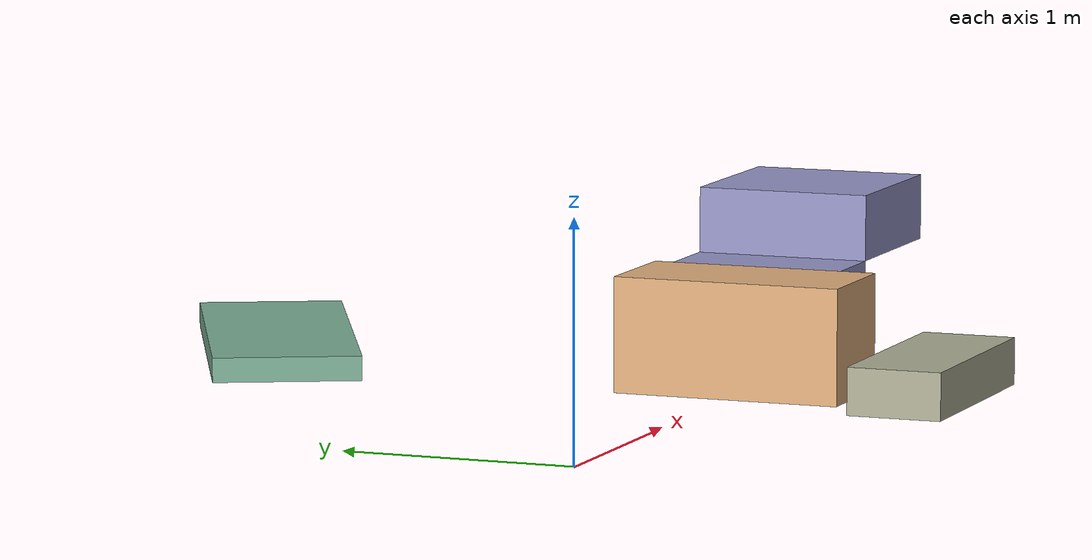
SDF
<?xml version="1.0"?>
<sdf version="1.6">
  <model name="obstacle_course">
    <static>true</static>

    <!-- Central low wall -->
    <link name="central_wall">
      <collision name="central_wall_collision">
        <geometry>
          <box>
            <size>0.5 1.0 0.5</size>
          </box>
        </geometry>
        <pose>2.0 0 0.25 0 0 0</pose>
      </collision>
      <visual name="central_wall_visual">
        <geometry>
          <box>
            <size>0.5 1.0 0.5</size>
          </box>
        </geometry>
        <pose>2.0 0 0.25 0 0 0</pose>
        <material>
          <ambient>0.7 0.5 0.3 1</ambient>
          <diffuse>0.9 0.7 0.5 1</diffuse>
        </material>
      </visual>
    </link>

    <!-- Step platforms -->
    <link name="step_1">
      <collision name="step_1_collision">
        <geometry>
          <box>
            <size>0.8 0.8 0.3</size>
          </box>
        </geometry>
        <pose>3.5 0.5 0.15 0 0 0</pose>
      </collision>
      <visual name="step_1_visual">
        <geometry>
          <box>
            <size>0.8 0.8 0.3</size>
          </box>
        </geometry>
        <pose>3.5 0.5 0.15 0 0 0</pose>
        <material>
          <ambient>0.4 0.4 0.6 1</ambient>
          <diffuse>0.6 0.6 0.8 1</diffuse>
        </material>
      </visual>
    </link>

    <link name="step_2">
      <collision name="step_2_collision">
        <geometry>
          <box>
            <size>0.8 0.8 0.3</size>
          </box>
        </geometry>
        <pose>4.3 0.5 0.45 0 0 0</pose>
      </collision>
      <visual name="step_2_visual">
        <geometry>
          <box>
            <size>0.8 0.8 0.3</size>
          </box>
        </geometry>
        <pose>4.3 0.5 0.45 0 0 0</pose>
        <material>
          <ambient>0.4 0.4 0.6 1</ambient>
          <diffuse>0.6 0.6 0.8 1</diffuse>
        </material>
      </visual>
    </link>

    <!-- Raised narrow platform -->
    <link name="narrow_platform">
      <collision name="narrow_platform_collision">
        <geometry>
          <box>
            <size>1.0 0.4 0.2</size>
          </box>
        </geometry>
        <pose>1.5 -1.0 0.2 0 0 0</pose>
      </collision>
      <visual name="narrow_platform_visual">
        <geometry>
          <box>
            <size>1.0 0.4 0.2</size>
          </box>
        </geometry>
        <pose>1.5 -1.0 0.2 0 0 0</pose>
        <material>
          <ambient>0.5 0.5 0.4 1</ambient>
          <diffuse>0.7 0.7 0.6 1</diffuse>
        </material>
      </visual>
    </link>

    <!-- Slope element -->
    <link name="slope">
      <collision name="slope_collision">
        <geometry>
          <box>
            <size>1.5 0.6 0.1</size>
          </box>
        </geometry>
        <pose>0.5 1.5 0.35 0 0 0.46365</pose>
      </collision>
      <visual name="slope_visual">
        <geometry>
          <box>
            <size>1.5 0.6 0.1</size>
          </box>
        </geometry>
        <pose>0.5 1.5 0.35 0 0 0.46365</pose>
        <material>
          <ambient>0.3 0.5 0.4 1</ambient>
          <diffuse>0.5 0.7 0.6 1</diffuse>
        </material>
      </visual>
    </link>
  </model>
</sdf>
